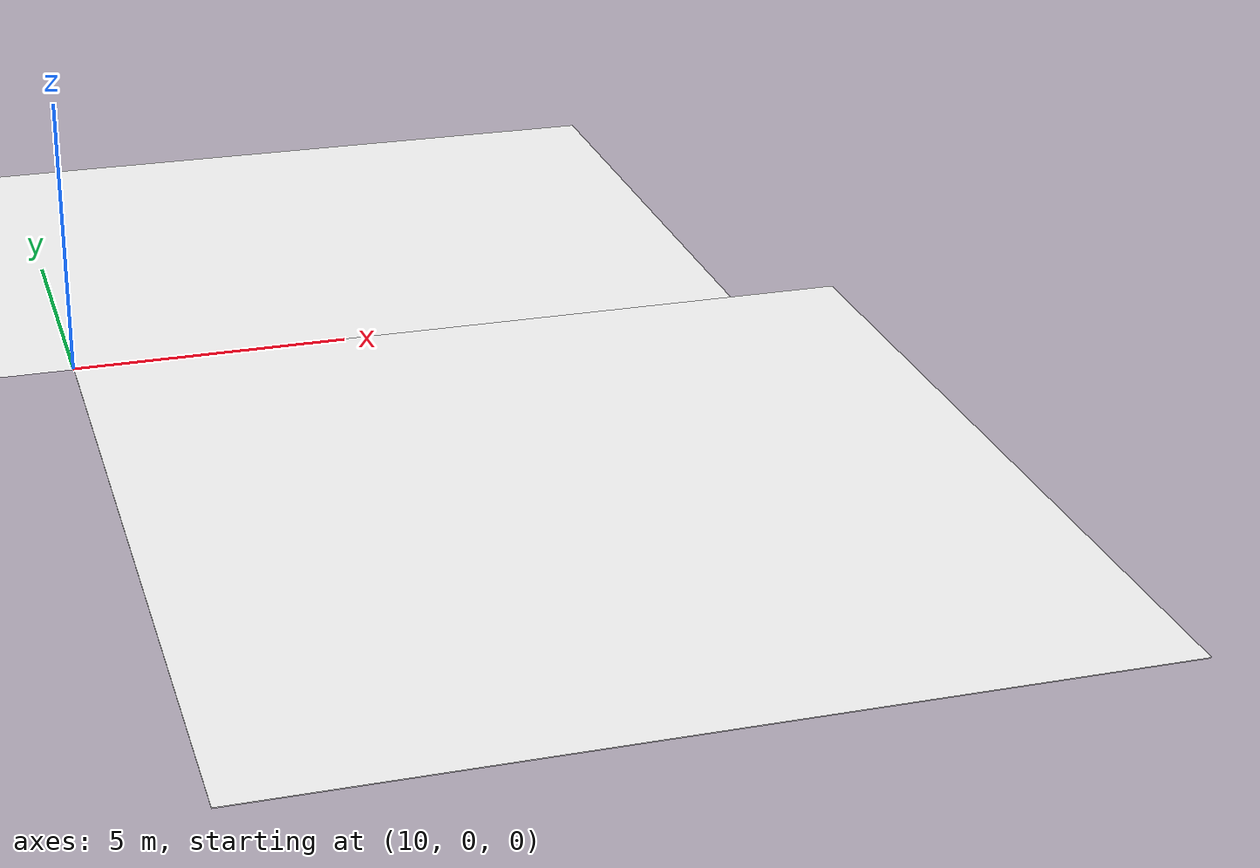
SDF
<sdf version="1.7">
 <world name="bfmc_official">
  <gravity>0 0 -9.81</gravity>
  <light name="c1" type="point">
   <pose>0 0 2 0 -0 0</pose>
   <diffuse>125 125 125 125</diffuse>
   <specular>50 50 50 50</specular>
   <attenuation><range>20</range><constant>0.3</constant><quadratic>0</quadratic><linear>0</linear></attenuation>
   <cast_shadows>0</cast_shadows>
   <direction>0 0 -1</direction>
   <spot><inner_angle>0</inner_angle><outer_angle>0</outer_angle><falloff>0</falloff></spot>
  </light>
  <light name="c2" type="point">
   <pose>22.6166 0 2 0 -0 0</pose>
   <diffuse>125 125 125 125</diffuse>
   <specular>50 50 50 50</specular>
   <attenuation><range>20</range><constant>0.3</constant><quadratic>0</quadratic><linear>0</linear></attenuation>
   <cast_shadows>0</cast_shadows>
   <direction>0 0 -1</direction>
   <spot><inner_angle>0</inner_angle><outer_angle>0</outer_angle><falloff>0</falloff></spot>
  </light>
  <light name="c3" type="point">
   <pose>0 15 2 0 -0 0</pose>
   <diffuse>125 125 125 125</diffuse>
   <specular>50 50 50 50</specular>
   <attenuation><range>20</range><constant>0.3</constant><quadratic>0</quadratic><linear>0</linear></attenuation>
   <cast_shadows>0</cast_shadows>
   <direction>0 0 -1</direction>
   <spot><inner_angle>0</inner_angle><outer_angle>0</outer_angle><falloff>0</falloff></spot>
  </light>
  <light name="c4" type="point">
   <pose>22.6166 15 2 0 -0 0</pose>
   <diffuse>125 125 125 125</diffuse>
   <specular>50 50 50 50</specular>
   <attenuation><range>50</range><constant>0.3</constant><quadratic>0</quadratic><linear>0</linear></attenuation>
   <cast_shadows>0</cast_shadows>
   <direction>0 0 -1</direction>
   <spot><inner_angle>0</inner_angle><outer_angle>0</outer_angle><falloff>0</falloff></spot>
  </light>
  <model name="track">
   <static>1</static>
   <link name="link">
    <collision name="collision">
     <geometry><plane><normal>0 0 1</normal><size>22.6166 15</size></plane></geometry>
     <surface>
      <contact><collide_bitmask>65535</collide_bitmask></contact>
      <friction><ode><mu>1</mu><mu2>1</mu2></ode></friction>
     </surface>
    </collision>
    <visual name="visual">
     <geometry><plane><normal>0 0 1</normal><size>22.6166 15</size></plane></geometry>
     <material>
      <ambient>1 1 1 1</ambient>
      <diffuse>1 1 1 1</diffuse>
      <specular>0 0 0 0</specular>
      <emissive>1 1 1 1</emissive>
      <script>
       <uri>model://track/materials/scripts</uri>
       <uri>model://track/materials/textures</uri>
       <name>BFMC_MATERIAL</name>
      </script>
     </material>
    </visual>
   </link>
   <pose>11.31 7.5 0 0 -0 0</pose>
  </model>
  <magnetic_field>6e-06 2.3e-05 -4.2e-05</magnetic_field>
  <atmosphere type="adiabatic"/>
  <physics type="ode">
   <max_step_size>0.001</max_step_size>
   <real_time_factor>1</real_time_factor>
   <real_time_update_rate>1000</real_time_update_rate>
  </physics>
  <scene><ambient>0.4 0.4 0.4 1</ambient><background>0.7 0.7 0.7 1</background><shadows>1</shadows></scene>
  <spherical_coordinates>
   <surface_model>EARTH_WGS84</surface_model>
   <latitude_deg>0</latitude_deg>
   <longitude_deg>0</longitude_deg>
   <elevation>0</elevation>
   <heading_deg>0</heading_deg>
  </spherical_coordinates>
  <model name="track_trainer">
   <static>1</static>
   <link name="link">
    <collision name="collision">
     <geometry><plane><normal>0 0 1</normal><size>14.68000 14.99000</size></plane></geometry>
     <surface>
      <contact><collide_bitmask>65535</collide_bitmask></contact>
      <friction><ode><mu>1</mu><mu2>1</mu2></ode></friction>
     </surface>
    </collision>
    <visual name="visual">
     <geometry><plane><normal>0 0 1</normal><size>14.68000 14.99000</size></plane></geometry>
     <material>
      <ambient>1 1 1 1</ambient>
      <diffuse>1 1 1 1</diffuse>
      <specular>0 0 0 0</specular>
      <emissive>1 1 1 1</emissive>
      <script>
       <uri>model://track_trainer/materials/scripts</uri>
       <uri>model://track_trainer/materials/textures</uri>
       <name>BFMC_MATERIAL_TRAINER</name>
      </script>
     </material>
    </visual>
   </link>
   <pose>17.34 -7.495 0 0 -0 0</pose>
  </model>
 </world>
</sdf>
